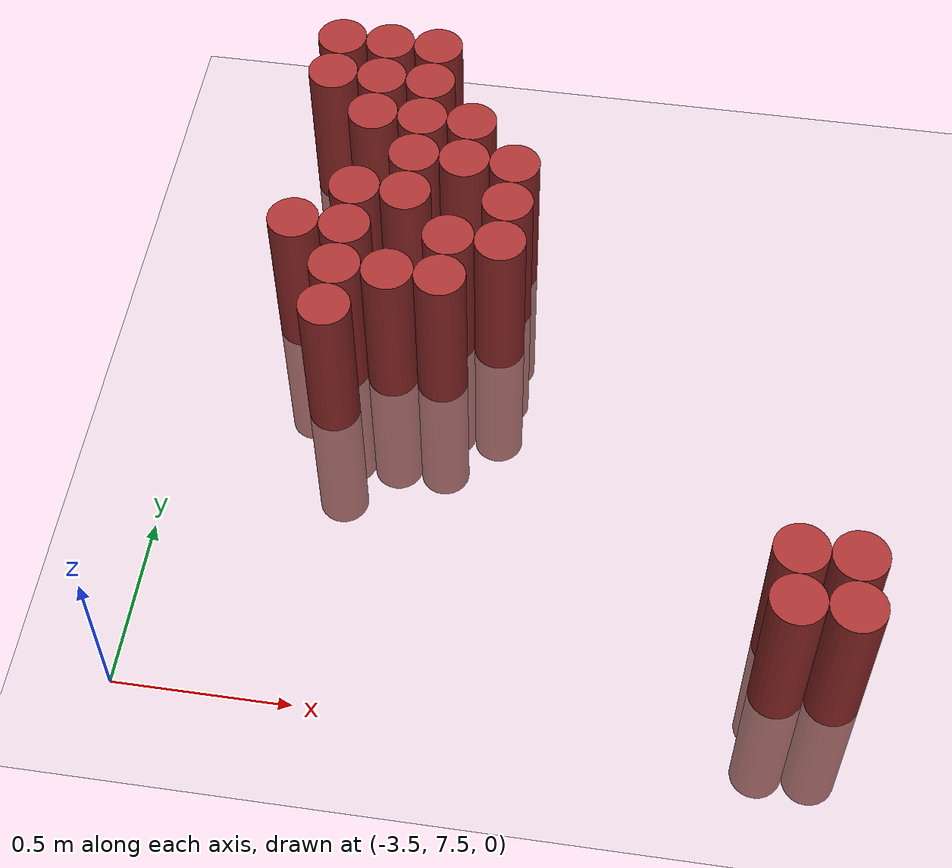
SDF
<sdf version="1.6">
 <world name="default">
  <model name="ground_plane">
   <static>1</static>
   <link name="link">
    <collision name="collision">
     <geometry><plane><normal>0 0 1</normal><size>100 100</size></plane></geometry>
     <surface><friction><ode><mu>100</mu><mu2>50</mu2></ode></friction></surface>
    </collision>
    <visual name="visual">
     <cast_shadows>0</cast_shadows>
     <geometry><plane><normal>0 0 1</normal><size>100 100</size></plane></geometry>
     <material>
      <script><uri>file://media/materials/scripts/gazebo.material</uri><name>Gazebo/Grey</name></script>
     </material>
    </visual>
   </link>
  </model>
  <model name="unit_cylinder_160">
   <static>1</static>
   <pose>-3.225000 8.775000 0.000000 0.000000 0.000000 0.000000</pose>
   <link name="link">
    <inertial>
     <mass>1</mass>
     <inertia><ixx>0.145833</ixx><ixy>0</ixy><ixz>0</ixz><iyy>0.145833</iyy><iyz>0</iyz><izz>0.125</izz></inertia>
    </inertial>
    <collision name="collision">
     <geometry><cylinder><radius>0.075000</radius><length>1</length></cylinder></geometry>
    </collision>
    <visual name="visual">
     <geometry><cylinder><radius>0.075000</radius><length>1</length></cylinder></geometry>
     <material>
      <ambient>0.648000 0.192000 0.192000 1</ambient>
      <diffuse>0.648000 0.192000 0.192000 1</diffuse>
     </material>
     <material>
      <script><name>Gazebo/Grey</name><uri>file://media/materials/scripts/gazebo.material</uri></script>
     </material>
    </visual>
   </link>
  </model>
  <model name="unit_cylinder_161">
   <static>1</static>
   <pose>-3.225000 9.375000 0.000000 0.000000 0.000000 0.000000</pose>
   <link name="link">
    <inertial>
     <mass>1</mass>
     <inertia><ixx>0.145833</ixx><ixy>0</ixy><ixz>0</ixz><iyy>0.145833</iyy><iyz>0</iyz><izz>0.125</izz></inertia>
    </inertial>
    <collision name="collision">
     <geometry><cylinder><radius>0.075000</radius><length>1</length></cylinder></geometry>
    </collision>
    <visual name="visual">
     <geometry><cylinder><radius>0.075000</radius><length>1</length></cylinder></geometry>
     <material>
      <ambient>0.648000 0.192000 0.192000 1</ambient>
      <diffuse>0.648000 0.192000 0.192000 1</diffuse>
     </material>
     <material>
      <script><name>Gazebo/Grey</name><uri>file://media/materials/scripts/gazebo.material</uri></script>
     </material>
    </visual>
   </link>
  </model>
  <model name="unit_cylinder_162">
   <static>1</static>
   <pose>-3.225000 9.525000 0.000000 0.000000 0.000000 0.000000</pose>
   <link name="link">
    <inertial>
     <mass>1</mass>
     <inertia><ixx>0.145833</ixx><ixy>0</ixy><ixz>0</ixz><iyy>0.145833</iyy><iyz>0</iyz><izz>0.125</izz></inertia>
    </inertial>
    <collision name="collision">
     <geometry><cylinder><radius>0.075000</radius><length>1</length></cylinder></geometry>
    </collision>
    <visual name="visual">
     <geometry><cylinder><radius>0.075000</radius><length>1</length></cylinder></geometry>
     <material>
      <ambient>0.648000 0.192000 0.192000 1</ambient>
      <diffuse>0.648000 0.192000 0.192000 1</diffuse>
     </material>
     <material>
      <script><name>Gazebo/Grey</name><uri>file://media/materials/scripts/gazebo.material</uri></script>
     </material>
    </visual>
   </link>
  </model>
  <model name="unit_cylinder_163">
   <static>1</static>
   <pose>-3.075000 8.475000 0.000000 0.000000 0.000000 0.000000</pose>
   <link name="link">
    <inertial>
     <mass>1</mass>
     <inertia><ixx>0.145833</ixx><ixy>0</ixy><ixz>0</ixz><iyy>0.145833</iyy><iyz>0</iyz><izz>0.125</izz></inertia>
    </inertial>
    <collision name="collision">
     <geometry><cylinder><radius>0.075000</radius><length>1</length></cylinder></geometry>
    </collision>
    <visual name="visual">
     <geometry><cylinder><radius>0.075000</radius><length>1</length></cylinder></geometry>
     <material>
      <ambient>0.648000 0.192000 0.192000 1</ambient>
      <diffuse>0.648000 0.192000 0.192000 1</diffuse>
     </material>
     <material>
      <script><name>Gazebo/Grey</name><uri>file://media/materials/scripts/gazebo.material</uri></script>
     </material>
    </visual>
   </link>
  </model>
  <model name="unit_cylinder_164">
   <static>1</static>
   <pose>-3.075000 8.625000 0.000000 0.000000 0.000000 0.000000</pose>
   <link name="link">
    <inertial>
     <mass>1</mass>
     <inertia><ixx>0.145833</ixx><ixy>0</ixy><ixz>0</ixz><iyy>0.145833</iyy><iyz>0</iyz><izz>0.125</izz></inertia>
    </inertial>
    <collision name="collision">
     <geometry><cylinder><radius>0.075000</radius><length>1</length></cylinder></geometry>
    </collision>
    <visual name="visual">
     <geometry><cylinder><radius>0.075000</radius><length>1</length></cylinder></geometry>
     <material>
      <ambient>0.648000 0.192000 0.192000 1</ambient>
      <diffuse>0.648000 0.192000 0.192000 1</diffuse>
     </material>
     <material>
      <script><name>Gazebo/Grey</name><uri>file://media/materials/scripts/gazebo.material</uri></script>
     </material>
    </visual>
   </link>
  </model>
  <model name="unit_cylinder_165">
   <static>1</static>
   <pose>-3.075000 8.775000 0.000000 0.000000 0.000000 0.000000</pose>
   <link name="link">
    <inertial>
     <mass>1</mass>
     <inertia><ixx>0.145833</ixx><ixy>0</ixy><ixz>0</ixz><iyy>0.145833</iyy><iyz>0</iyz><izz>0.125</izz></inertia>
    </inertial>
    <collision name="collision">
     <geometry><cylinder><radius>0.075000</radius><length>1</length></cylinder></geometry>
    </collision>
    <visual name="visual">
     <geometry><cylinder><radius>0.075000</radius><length>1</length></cylinder></geometry>
     <material>
      <ambient>0.648000 0.192000 0.192000 1</ambient>
      <diffuse>0.648000 0.192000 0.192000 1</diffuse>
     </material>
     <material>
      <script><name>Gazebo/Grey</name><uri>file://media/materials/scripts/gazebo.material</uri></script>
     </material>
    </visual>
   </link>
  </model>
  <model name="unit_cylinder_166">
   <static>1</static>
   <pose>-3.075000 8.925000 0.000000 0.000000 0.000000 0.000000</pose>
   <link name="link">
    <inertial>
     <mass>1</mass>
     <inertia><ixx>0.145833</ixx><ixy>0</ixy><ixz>0</ixz><iyy>0.145833</iyy><iyz>0</iyz><izz>0.125</izz></inertia>
    </inertial>
    <collision name="collision">
     <geometry><cylinder><radius>0.075000</radius><length>1</length></cylinder></geometry>
    </collision>
    <visual name="visual">
     <geometry><cylinder><radius>0.075000</radius><length>1</length></cylinder></geometry>
     <material>
      <ambient>0.648000 0.192000 0.192000 1</ambient>
      <diffuse>0.648000 0.192000 0.192000 1</diffuse>
     </material>
     <material>
      <script><name>Gazebo/Grey</name><uri>file://media/materials/scripts/gazebo.material</uri></script>
     </material>
    </visual>
   </link>
  </model>
  <model name="unit_cylinder_167">
   <static>1</static>
   <pose>-3.075000 9.225000 0.000000 0.000000 0.000000 0.000000</pose>
   <link name="link">
    <inertial>
     <mass>1</mass>
     <inertia><ixx>0.145833</ixx><ixy>0</ixy><ixz>0</ixz><iyy>0.145833</iyy><iyz>0</iyz><izz>0.125</izz></inertia>
    </inertial>
    <collision name="collision">
     <geometry><cylinder><radius>0.075000</radius><length>1</length></cylinder></geometry>
    </collision>
    <visual name="visual">
     <geometry><cylinder><radius>0.075000</radius><length>1</length></cylinder></geometry>
     <material>
      <ambient>0.648000 0.192000 0.192000 1</ambient>
      <diffuse>0.648000 0.192000 0.192000 1</diffuse>
     </material>
     <material>
      <script><name>Gazebo/Grey</name><uri>file://media/materials/scripts/gazebo.material</uri></script>
     </material>
    </visual>
   </link>
  </model>
  <model name="unit_cylinder_168">
   <static>1</static>
   <pose>-3.075000 9.375000 0.000000 0.000000 0.000000 0.000000</pose>
   <link name="link">
    <inertial>
     <mass>1</mass>
     <inertia><ixx>0.145833</ixx><ixy>0</ixy><ixz>0</ixz><iyy>0.145833</iyy><iyz>0</iyz><izz>0.125</izz></inertia>
    </inertial>
    <collision name="collision">
     <geometry><cylinder><radius>0.075000</radius><length>1</length></cylinder></geometry>
    </collision>
    <visual name="visual">
     <geometry><cylinder><radius>0.075000</radius><length>1</length></cylinder></geometry>
     <material>
      <ambient>0.648000 0.192000 0.192000 1</ambient>
      <diffuse>0.648000 0.192000 0.192000 1</diffuse>
     </material>
     <material>
      <script><name>Gazebo/Grey</name><uri>file://media/materials/scripts/gazebo.material</uri></script>
     </material>
    </visual>
   </link>
  </model>
  <model name="unit_cylinder_169">
   <static>1</static>
   <pose>-3.075000 9.525000 0.000000 0.000000 0.000000 0.000000</pose>
   <link name="link">
    <inertial>
     <mass>1</mass>
     <inertia><ixx>0.145833</ixx><ixy>0</ixy><ixz>0</ixz><iyy>0.145833</iyy><iyz>0</iyz><izz>0.125</izz></inertia>
    </inertial>
    <collision name="collision">
     <geometry><cylinder><radius>0.075000</radius><length>1</length></cylinder></geometry>
    </collision>
    <visual name="visual">
     <geometry><cylinder><radius>0.075000</radius><length>1</length></cylinder></geometry>
     <material>
      <ambient>0.648000 0.192000 0.192000 1</ambient>
      <diffuse>0.648000 0.192000 0.192000 1</diffuse>
     </material>
     <material>
      <script><name>Gazebo/Grey</name><uri>file://media/materials/scripts/gazebo.material</uri></script>
     </material>
    </visual>
   </link>
  </model>
  <model name="unit_cylinder_170">
   <static>1</static>
   <pose>-2.925000 8.625000 0.000000 0.000000 0.000000 0.000000</pose>
   <link name="link">
    <inertial>
     <mass>1</mass>
     <inertia><ixx>0.145833</ixx><ixy>0</ixy><ixz>0</ixz><iyy>0.145833</iyy><iyz>0</iyz><izz>0.125</izz></inertia>
    </inertial>
    <collision name="collision">
     <geometry><cylinder><radius>0.075000</radius><length>1</length></cylinder></geometry>
    </collision>
    <visual name="visual">
     <geometry><cylinder><radius>0.075000</radius><length>1</length></cylinder></geometry>
     <material>
      <ambient>0.648000 0.192000 0.192000 1</ambient>
      <diffuse>0.648000 0.192000 0.192000 1</diffuse>
     </material>
     <material>
      <script><name>Gazebo/Grey</name><uri>file://media/materials/scripts/gazebo.material</uri></script>
     </material>
    </visual>
   </link>
  </model>
  <model name="unit_cylinder_171">
   <static>1</static>
   <pose>-2.925000 8.925000 0.000000 0.000000 0.000000 0.000000</pose>
   <link name="link">
    <inertial>
     <mass>1</mass>
     <inertia><ixx>0.145833</ixx><ixy>0</ixy><ixz>0</ixz><iyy>0.145833</iyy><iyz>0</iyz><izz>0.125</izz></inertia>
    </inertial>
    <collision name="collision">
     <geometry><cylinder><radius>0.075000</radius><length>1</length></cylinder></geometry>
    </collision>
    <visual name="visual">
     <geometry><cylinder><radius>0.075000</radius><length>1</length></cylinder></geometry>
     <material>
      <ambient>0.648000 0.192000 0.192000 1</ambient>
      <diffuse>0.648000 0.192000 0.192000 1</diffuse>
     </material>
     <material>
      <script><name>Gazebo/Grey</name><uri>file://media/materials/scripts/gazebo.material</uri></script>
     </material>
    </visual>
   </link>
  </model>
  <model name="unit_cylinder_172">
   <static>1</static>
   <pose>-2.925000 9.075000 0.000000 0.000000 0.000000 0.000000</pose>
   <link name="link">
    <inertial>
     <mass>1</mass>
     <inertia><ixx>0.145833</ixx><ixy>0</ixy><ixz>0</ixz><iyy>0.145833</iyy><iyz>0</iyz><izz>0.125</izz></inertia>
    </inertial>
    <collision name="collision">
     <geometry><cylinder><radius>0.075000</radius><length>1</length></cylinder></geometry>
    </collision>
    <visual name="visual">
     <geometry><cylinder><radius>0.075000</radius><length>1</length></cylinder></geometry>
     <material>
      <ambient>0.648000 0.192000 0.192000 1</ambient>
      <diffuse>0.648000 0.192000 0.192000 1</diffuse>
     </material>
     <material>
      <script><name>Gazebo/Grey</name><uri>file://media/materials/scripts/gazebo.material</uri></script>
     </material>
    </visual>
   </link>
  </model>
  <model name="unit_cylinder_173">
   <static>1</static>
   <pose>-2.925000 9.225000 0.000000 0.000000 0.000000 0.000000</pose>
   <link name="link">
    <inertial>
     <mass>1</mass>
     <inertia><ixx>0.145833</ixx><ixy>0</ixy><ixz>0</ixz><iyy>0.145833</iyy><iyz>0</iyz><izz>0.125</izz></inertia>
    </inertial>
    <collision name="collision">
     <geometry><cylinder><radius>0.075000</radius><length>1</length></cylinder></geometry>
    </collision>
    <visual name="visual">
     <geometry><cylinder><radius>0.075000</radius><length>1</length></cylinder></geometry>
     <material>
      <ambient>0.648000 0.192000 0.192000 1</ambient>
      <diffuse>0.648000 0.192000 0.192000 1</diffuse>
     </material>
     <material>
      <script><name>Gazebo/Grey</name><uri>file://media/materials/scripts/gazebo.material</uri></script>
     </material>
    </visual>
   </link>
  </model>
  <model name="unit_cylinder_174">
   <static>1</static>
   <pose>-2.925000 9.375000 0.000000 0.000000 0.000000 0.000000</pose>
   <link name="link">
    <inertial>
     <mass>1</mass>
     <inertia><ixx>0.145833</ixx><ixy>0</ixy><ixz>0</ixz><iyy>0.145833</iyy><iyz>0</iyz><izz>0.125</izz></inertia>
    </inertial>
    <collision name="collision">
     <geometry><cylinder><radius>0.075000</radius><length>1</length></cylinder></geometry>
    </collision>
    <visual name="visual">
     <geometry><cylinder><radius>0.075000</radius><length>1</length></cylinder></geometry>
     <material>
      <ambient>0.648000 0.192000 0.192000 1</ambient>
      <diffuse>0.648000 0.192000 0.192000 1</diffuse>
     </material>
     <material>
      <script><name>Gazebo/Grey</name><uri>file://media/materials/scripts/gazebo.material</uri></script>
     </material>
    </visual>
   </link>
  </model>
  <model name="unit_cylinder_175">
   <static>1</static>
   <pose>-2.925000 9.525000 0.000000 0.000000 0.000000 0.000000</pose>
   <link name="link">
    <inertial>
     <mass>1</mass>
     <inertia><ixx>0.145833</ixx><ixy>0</ixy><ixz>0</ixz><iyy>0.145833</iyy><iyz>0</iyz><izz>0.125</izz></inertia>
    </inertial>
    <collision name="collision">
     <geometry><cylinder><radius>0.075000</radius><length>1</length></cylinder></geometry>
    </collision>
    <visual name="visual">
     <geometry><cylinder><radius>0.075000</radius><length>1</length></cylinder></geometry>
     <material>
      <ambient>0.648000 0.192000 0.192000 1</ambient>
      <diffuse>0.648000 0.192000 0.192000 1</diffuse>
     </material>
     <material>
      <script><name>Gazebo/Grey</name><uri>file://media/materials/scripts/gazebo.material</uri></script>
     </material>
    </visual>
   </link>
  </model>
  <model name="unit_cylinder_176">
   <static>1</static>
   <pose>-2.775000 8.625000 0.000000 0.000000 0.000000 0.000000</pose>
   <link name="link">
    <inertial>
     <mass>1</mass>
     <inertia><ixx>0.145833</ixx><ixy>0</ixy><ixz>0</ixz><iyy>0.145833</iyy><iyz>0</iyz><izz>0.125</izz></inertia>
    </inertial>
    <collision name="collision">
     <geometry><cylinder><radius>0.075000</radius><length>1</length></cylinder></geometry>
    </collision>
    <visual name="visual">
     <geometry><cylinder><radius>0.075000</radius><length>1</length></cylinder></geometry>
     <material>
      <ambient>0.648000 0.192000 0.192000 1</ambient>
      <diffuse>0.648000 0.192000 0.192000 1</diffuse>
     </material>
     <material>
      <script><name>Gazebo/Grey</name><uri>file://media/materials/scripts/gazebo.material</uri></script>
     </material>
    </visual>
   </link>
  </model>
  <model name="unit_cylinder_177">
   <static>1</static>
   <pose>-2.775000 8.775000 0.000000 0.000000 0.000000 0.000000</pose>
   <link name="link">
    <inertial>
     <mass>1</mass>
     <inertia><ixx>0.145833</ixx><ixy>0</ixy><ixz>0</ixz><iyy>0.145833</iyy><iyz>0</iyz><izz>0.125</izz></inertia>
    </inertial>
    <collision name="collision">
     <geometry><cylinder><radius>0.075000</radius><length>1</length></cylinder></geometry>
    </collision>
    <visual name="visual">
     <geometry><cylinder><radius>0.075000</radius><length>1</length></cylinder></geometry>
     <material>
      <ambient>0.648000 0.192000 0.192000 1</ambient>
      <diffuse>0.648000 0.192000 0.192000 1</diffuse>
     </material>
     <material>
      <script><name>Gazebo/Grey</name><uri>file://media/materials/scripts/gazebo.material</uri></script>
     </material>
    </visual>
   </link>
  </model>
  <model name="unit_cylinder_178">
   <static>1</static>
   <pose>-2.775000 9.075000 0.000000 0.000000 0.000000 0.000000</pose>
   <link name="link">
    <inertial>
     <mass>1</mass>
     <inertia><ixx>0.145833</ixx><ixy>0</ixy><ixz>0</ixz><iyy>0.145833</iyy><iyz>0</iyz><izz>0.125</izz></inertia>
    </inertial>
    <collision name="collision">
     <geometry><cylinder><radius>0.075000</radius><length>1</length></cylinder></geometry>
    </collision>
    <visual name="visual">
     <geometry><cylinder><radius>0.075000</radius><length>1</length></cylinder></geometry>
     <material>
      <ambient>0.648000 0.192000 0.192000 1</ambient>
      <diffuse>0.648000 0.192000 0.192000 1</diffuse>
     </material>
     <material>
      <script><name>Gazebo/Grey</name><uri>file://media/materials/scripts/gazebo.material</uri></script>
     </material>
    </visual>
   </link>
  </model>
  <model name="unit_cylinder_179">
   <static>1</static>
   <pose>-2.775000 9.225000 0.000000 0.000000 0.000000 0.000000</pose>
   <link name="link">
    <inertial>
     <mass>1</mass>
     <inertia><ixx>0.145833</ixx><ixy>0</ixy><ixz>0</ixz><iyy>0.145833</iyy><iyz>0</iyz><izz>0.125</izz></inertia>
    </inertial>
    <collision name="collision">
     <geometry><cylinder><radius>0.075000</radius><length>1</length></cylinder></geometry>
    </collision>
    <visual name="visual">
     <geometry><cylinder><radius>0.075000</radius><length>1</length></cylinder></geometry>
     <material>
      <ambient>0.648000 0.192000 0.192000 1</ambient>
      <diffuse>0.648000 0.192000 0.192000 1</diffuse>
     </material>
     <material>
      <script><name>Gazebo/Grey</name><uri>file://media/materials/scripts/gazebo.material</uri></script>
     </material>
    </visual>
   </link>
  </model>
  <model name="unit_cylinder_180">
   <static>1</static>
   <pose>-2.625000 8.775000 0.000000 0.000000 0.000000 0.000000</pose>
   <link name="link">
    <inertial>
     <mass>1</mass>
     <inertia><ixx>0.145833</ixx><ixy>0</ixy><ixz>0</ixz><iyy>0.145833</iyy><iyz>0</iyz><izz>0.125</izz></inertia>
    </inertial>
    <collision name="collision">
     <geometry><cylinder><radius>0.075000</radius><length>1</length></cylinder></geometry>
    </collision>
    <visual name="visual">
     <geometry><cylinder><radius>0.075000</radius><length>1</length></cylinder></geometry>
     <material>
      <ambient>0.648000 0.192000 0.192000 1</ambient>
      <diffuse>0.648000 0.192000 0.192000 1</diffuse>
     </material>
     <material>
      <script><name>Gazebo/Grey</name><uri>file://media/materials/scripts/gazebo.material</uri></script>
     </material>
    </visual>
   </link>
  </model>
  <model name="unit_cylinder_181">
   <static>1</static>
   <pose>-2.625000 8.925000 0.000000 0.000000 0.000000 0.000000</pose>
   <link name="link">
    <inertial>
     <mass>1</mass>
     <inertia><ixx>0.145833</ixx><ixy>0</ixy><ixz>0</ixz><iyy>0.145833</iyy><iyz>0</iyz><izz>0.125</izz></inertia>
    </inertial>
    <collision name="collision">
     <geometry><cylinder><radius>0.075000</radius><length>1</length></cylinder></geometry>
    </collision>
    <visual name="visual">
     <geometry><cylinder><radius>0.075000</radius><length>1</length></cylinder></geometry>
     <material>
      <ambient>0.648000 0.192000 0.192000 1</ambient>
      <diffuse>0.648000 0.192000 0.192000 1</diffuse>
     </material>
     <material>
      <script><name>Gazebo/Grey</name><uri>file://media/materials/scripts/gazebo.material</uri></script>
     </material>
    </visual>
   </link>
  </model>
  <model name="unit_cylinder_182">
   <static>1</static>
   <pose>-2.625000 9.075000 0.000000 0.000000 0.000000 0.000000</pose>
   <link name="link">
    <inertial>
     <mass>1</mass>
     <inertia><ixx>0.145833</ixx><ixy>0</ixy><ixz>0</ixz><iyy>0.145833</iyy><iyz>0</iyz><izz>0.125</izz></inertia>
    </inertial>
    <collision name="collision">
     <geometry><cylinder><radius>0.075000</radius><length>1</length></cylinder></geometry>
    </collision>
    <visual name="visual">
     <geometry><cylinder><radius>0.075000</radius><length>1</length></cylinder></geometry>
     <material>
      <ambient>0.648000 0.192000 0.192000 1</ambient>
      <diffuse>0.648000 0.192000 0.192000 1</diffuse>
     </material>
     <material>
      <script><name>Gazebo/Grey</name><uri>file://media/materials/scripts/gazebo.material</uri></script>
     </material>
    </visual>
   </link>
  </model>
  <model name="unit_cylinder_199">
   <static>1</static>
   <pose>-1.725000 7.725000 0.000000 0.000000 0.000000 0.000000</pose>
   <link name="link">
    <inertial>
     <mass>1</mass>
     <inertia><ixx>0.145833</ixx><ixy>0</ixy><ixz>0</ixz><iyy>0.145833</iyy><iyz>0</iyz><izz>0.125</izz></inertia>
    </inertial>
    <collision name="collision">
     <geometry><cylinder><radius>0.075000</radius><length>1</length></cylinder></geometry>
    </collision>
    <visual name="visual">
     <geometry><cylinder><radius>0.075000</radius><length>1</length></cylinder></geometry>
     <material>
      <ambient>0.648000 0.192000 0.192000 1</ambient>
      <diffuse>0.648000 0.192000 0.192000 1</diffuse>
     </material>
     <material>
      <script><name>Gazebo/Grey</name><uri>file://media/materials/scripts/gazebo.material</uri></script>
     </material>
    </visual>
   </link>
  </model>
  <model name="unit_cylinder_200">
   <static>1</static>
   <pose>-1.725000 7.875000 0.000000 0.000000 0.000000 0.000000</pose>
   <link name="link">
    <inertial>
     <mass>1</mass>
     <inertia><ixx>0.145833</ixx><ixy>0</ixy><ixz>0</ixz><iyy>0.145833</iyy><iyz>0</iyz><izz>0.125</izz></inertia>
    </inertial>
    <collision name="collision">
     <geometry><cylinder><radius>0.075000</radius><length>1</length></cylinder></geometry>
    </collision>
    <visual name="visual">
     <geometry><cylinder><radius>0.075000</radius><length>1</length></cylinder></geometry>
     <material>
      <ambient>0.648000 0.192000 0.192000 1</ambient>
      <diffuse>0.648000 0.192000 0.192000 1</diffuse>
     </material>
     <material>
      <script><name>Gazebo/Grey</name><uri>file://media/materials/scripts/gazebo.material</uri></script>
     </material>
    </visual>
   </link>
  </model>
  <model name="unit_cylinder_203">
   <static>1</static>
   <pose>-1.575000 7.725000 0.000000 0.000000 0.000000 0.000000</pose>
   <link name="link">
    <inertial>
     <mass>1</mass>
     <inertia><ixx>0.145833</ixx><ixy>0</ixy><ixz>0</ixz><iyy>0.145833</iyy><iyz>0</iyz><izz>0.125</izz></inertia>
    </inertial>
    <collision name="collision">
     <geometry><cylinder><radius>0.075000</radius><length>1</length></cylinder></geometry>
    </collision>
    <visual name="visual">
     <geometry><cylinder><radius>0.075000</radius><length>1</length></cylinder></geometry>
     <material>
      <ambient>0.648000 0.192000 0.192000 1</ambient>
      <diffuse>0.648000 0.192000 0.192000 1</diffuse>
     </material>
     <material>
      <script><name>Gazebo/Grey</name><uri>file://media/materials/scripts/gazebo.material</uri></script>
     </material>
    </visual>
   </link>
  </model>
  <model name="unit_cylinder_204">
   <static>1</static>
   <pose>-1.575000 7.875000 0.000000 0.000000 0.000000 0.000000</pose>
   <link name="link">
    <inertial>
     <mass>1</mass>
     <inertia><ixx>0.145833</ixx><ixy>0</ixy><ixz>0</ixz><iyy>0.145833</iyy><iyz>0</iyz><izz>0.125</izz></inertia>
    </inertial>
    <collision name="collision">
     <geometry><cylinder><radius>0.075000</radius><length>1</length></cylinder></geometry>
    </collision>
    <visual name="visual">
     <geometry><cylinder><radius>0.075000</radius><length>1</length></cylinder></geometry>
     <material>
      <ambient>0.648000 0.192000 0.192000 1</ambient>
      <diffuse>0.648000 0.192000 0.192000 1</diffuse>
     </material>
     <material>
      <script><name>Gazebo/Grey</name><uri>file://media/materials/scripts/gazebo.material</uri></script>
     </material>
    </visual>
   </link>
  </model>
 </world>
</sdf>
